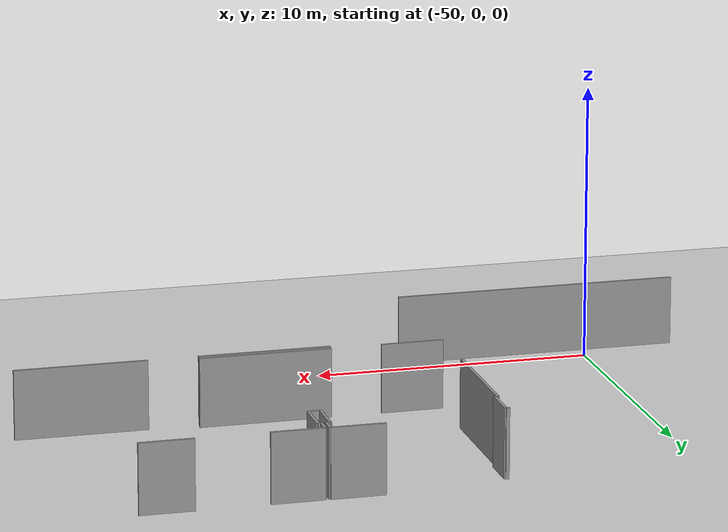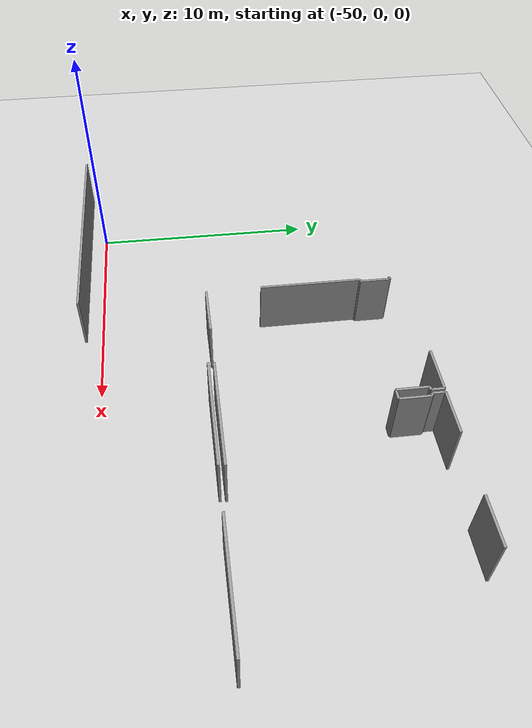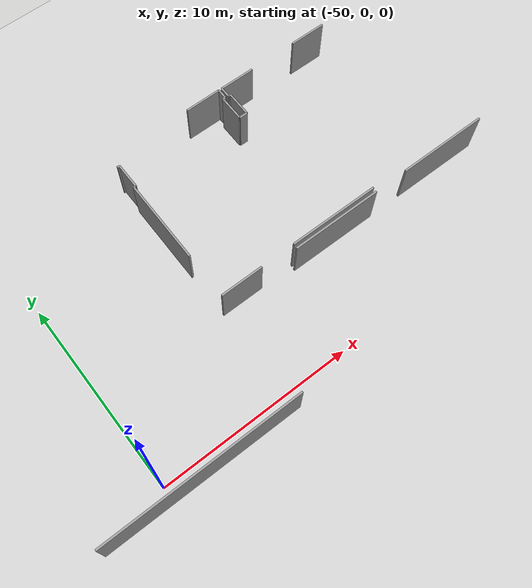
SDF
<sdf version="1.6">
 <world name="default">
  <model name="ground_plane">
   <static>1</static>
   <link name="link">
    <collision name="collision">
     <geometry><plane><normal>0 0 1</normal><size>100 100</size></plane></geometry>
     <surface><friction><ode><mu>100</mu><mu2>50</mu2></ode></friction></surface>
    </collision>
    <visual name="visual">
     <cast_shadows>0</cast_shadows>
     <geometry><plane><normal>0 0 1</normal><size>100 100</size></plane></geometry>
     <material>
      <script><uri>file://media/materials/scripts/gazebo.material</uri><name>Gazebo/Grey</name></script>
     </material>
    </visual>
   </link>
  </model>
  <model name="0510040943_A-40">
   <static>1</static>
   <link name="Wall_15">
    <collision name="Wall_15_Collision">
     <geometry><box><size>4.71139696555 0.1 2.5</size></box></geometry>
     <pose>2.35569848277 0 1.25 0 0 0</pose>
    </collision>
    <visual name="Wall_15_Visual">
     <pose>2.35569848277 0 1.25 0 0 0</pose>
     <geometry><box><size>4.71139696555 0.1 2.5</size></box></geometry>
     <material>
      <script><uri>file://media/materials/scripts/gazebo.material</uri><name>Gazebo/Grey</name></script>
      <ambient>1 1 1 1</ambient>
     </material>
    </visual>
    <pose>16.8624092962 -8.89303293246 0 0 0 0.0</pose>
   </link>
   <link name="Wall_16">
    <collision name="Wall_16_Collision">
     <geometry><box><size>4.71456842746 0.1 2.5</size></box></geometry>
     <pose>2.35728421373 0 1.25 0 0 0</pose>
    </collision>
    <visual name="Wall_16_Visual">
     <pose>2.35728421373 0 1.25 0 0 0</pose>
     <geometry><box><size>4.71456842746 0.1 2.5</size></box></geometry>
     <material>
      <script><uri>file://media/materials/scripts/gazebo.material</uri><name>Gazebo/Grey</name></script>
      <ambient>1 1 1 1</ambient>
     </material>
    </visual>
    <pose>23.3612421982 -8.89303293246 0 0 0 0.0</pose>
   </link>
   <link name="Wall_43">
    <collision name="Wall_43_Collision">
     <geometry><box><size>10.3198102197 0.1 2.5</size></box></geometry>
     <pose>5.15990510986 0 1.25 0 0 0</pose>
    </collision>
    <visual name="Wall_43_Visual">
     <pose>5.15990510986 0 1.25 0 0 0</pose>
     <geometry><box><size>10.3198102197 0.1 2.5</size></box></geometry>
     <material>
      <script><uri>file://media/materials/scripts/gazebo.material</uri><name>Gazebo/Grey</name></script>
      <ambient>1 1 1 1</ambient>
     </material>
    </visual>
    <pose>12.9674734866 -14.153727102 0 0 0 3.14159265359</pose>
   </link>
   <link name="Wall_54">
    <collision name="Wall_54_Collision">
     <geometry><box><size>4.38968386868 0.1 2.5</size></box></geometry>
     <pose>2.19484193434 0 1.25 0 0 0</pose>
    </collision>
    <visual name="Wall_54_Visual">
     <pose>2.19484193434 0 1.25 0 0 0</pose>
     <geometry><box><size>4.38968386868 0.1 2.5</size></box></geometry>
     <material>
      <script><uri>file://media/materials/scripts/gazebo.material</uri><name>Gazebo/Grey</name></script>
      <ambient>1 1 1 1</ambient>
     </material>
    </visual>
    <pose>12.8601512153 -6.28812097224 0 0 0 1.57079632679</pose>
   </link>
   <link name="Wall_55">
    <collision name="Wall_55_Collision">
     <geometry><box><size>0.10440452631 0.1 2.5</size></box></geometry>
     <pose>0.0522022631552 0 1.25 0 0 0</pose>
    </collision>
    <visual name="Wall_55_Visual">
     <pose>0.0522022631552 0 1.25 0 0 0</pose>
     <geometry><box><size>0.10440452631 0.1 2.5</size></box></geometry>
     <material>
      <script><uri>file://media/materials/scripts/gazebo.material</uri><name>Gazebo/Grey</name></script>
      <ambient>1 1 1 1</ambient>
     </material>
    </visual>
    <pose>12.8601512153 -1.89843710357 0 0 0 0.0</pose>
   </link>
   <link name="Wall_56">
    <collision name="Wall_56_Collision">
     <geometry><box><size>1.32452935505 0.1 2.5</size></box></geometry>
     <pose>0.662264677526 0 1.25 0 0 0</pose>
    </collision>
    <visual name="Wall_56_Visual">
     <pose>0.662264677526 0 1.25 0 0 0</pose>
     <geometry><box><size>1.32452935505 0.1 2.5</size></box></geometry>
     <material>
      <script><uri>file://media/materials/scripts/gazebo.material</uri><name>Gazebo/Grey</name></script>
      <ambient>1 1 1 1</ambient>
     </material>
    </visual>
    <pose>12.9645557416 -1.89843710357 0 0 0 1.57079632679</pose>
   </link>
   <link name="Wall_57">
    <collision name="Wall_57_Collision">
     <geometry><box><size>0.126097325823 0.1 2.5</size></box></geometry>
     <pose>0.0630486629117 0 1.25 0 0 0</pose>
    </collision>
    <visual name="Wall_57_Visual">
     <pose>0.0630486629117 0 1.25 0 0 0</pose>
     <geometry><box><size>0.126097325823 0.1 2.5</size></box></geometry>
     <material>
      <script><uri>file://media/materials/scripts/gazebo.material</uri><name>Gazebo/Grey</name></script>
      <ambient>1 1 1 1</ambient>
     </material>
    </visual>
    <pose>12.9645557416 -0.573907748516 0 0 0 3.14159265359</pose>
   </link>
   <link name="Wall_60">
    <collision name="Wall_60_Collision">
     <geometry><box><size>1.90287715025 0.1 2.5</size></box></geometry>
     <pose>0.951438575126 0 1.25 0 0 0</pose>
    </collision>
    <visual name="Wall_60_Visual">
     <pose>0.951438575126 0 1.25 0 0 0</pose>
     <geometry><box><size>1.90287715025 0.1 2.5</size></box></geometry>
     <material>
      <script><uri>file://media/materials/scripts/gazebo.material</uri><name>Gazebo/Grey</name></script>
      <ambient>1 1 1 1</ambient>
     </material>
    </visual>
    <pose>17.249835084 -0.0189019130258 0 0 0 0.0</pose>
   </link>
   <link name="Wall_61">
    <collision name="Wall_61_Collision">
     <geometry><box><size>0.534962196174 0.1 2.5</size></box></geometry>
     <pose>0.267481098087 0 1.25 0 0 0</pose>
    </collision>
    <visual name="Wall_61_Visual">
     <pose>0.267481098087 0 1.25 0 0 0</pose>
     <geometry><box><size>0.534962196174 0.1 2.5</size></box></geometry>
     <material>
      <script><uri>file://media/materials/scripts/gazebo.material</uri><name>Gazebo/Grey</name></script>
      <ambient>1 1 1 1</ambient>
     </material>
    </visual>
    <pose>19.1527122342 -0.0189019130258 0 0 0 -1.57079632679</pose>
   </link>
   <link name="Wall_62">
    <collision name="Wall_62_Collision">
     <geometry><box><size>0.138402598062 0.1 2.5</size></box></geometry>
     <pose>0.0692012990308 0 1.25 0 0 0</pose>
    </collision>
    <visual name="Wall_62_Visual">
     <pose>0.0692012990308 0 1.25 0 0 0</pose>
     <geometry><box><size>0.138402598062 0.1 2.5</size></box></geometry>
     <material>
      <script><uri>file://media/materials/scripts/gazebo.material</uri><name>Gazebo/Grey</name></script>
      <ambient>1 1 1 1</ambient>
     </material>
    </visual>
    <pose>19.1527122342 -0.5538641092 0 0 0 3.14159265359</pose>
   </link>
   <link name="Wall_63">
    <collision name="Wall_63_Collision">
     <geometry><box><size>1.33264829756 0.1 2.5</size></box></geometry>
     <pose>0.66632414878 0 1.25 0 0 0</pose>
    </collision>
    <visual name="Wall_63_Visual">
     <pose>0.66632414878 0 1.25 0 0 0</pose>
     <geometry><box><size>1.33264829756 0.1 2.5</size></box></geometry>
     <material>
      <script><uri>file://media/materials/scripts/gazebo.material</uri><name>Gazebo/Grey</name></script>
      <ambient>1 1 1 1</ambient>
     </material>
    </visual>
    <pose>19.0143096362 -0.5538641092 0 0 0 -1.57079632679</pose>
   </link>
   <link name="Wall_64">
    <collision name="Wall_64_Collision">
     <geometry><box><size>0.427005632516 0.1 2.5</size></box></geometry>
     <pose>0.213502816258 0 1.25 0 0 0</pose>
    </collision>
    <visual name="Wall_64_Visual">
     <pose>0.213502816258 0 1.25 0 0 0</pose>
     <geometry><box><size>0.427005632516 0.1 2.5</size></box></geometry>
     <material>
      <script><uri>file://media/materials/scripts/gazebo.material</uri><name>Gazebo/Grey</name></script>
      <ambient>1 1 1 1</ambient>
     </material>
    </visual>
    <pose>19.0143096362 -1.88651240676 0 0 0 0.0</pose>
   </link>
   <link name="Wall_65">
    <collision name="Wall_65_Collision">
     <geometry><box><size>1.31450753539 0.1 2.5</size></box></geometry>
     <pose>0.657253767697 0 1.25 0 0 0</pose>
    </collision>
    <visual name="Wall_65_Visual">
     <pose>0.657253767697 0 1.25 0 0 0</pose>
     <geometry><box><size>1.31450753539 0.1 2.5</size></box></geometry>
     <material>
      <script><uri>file://media/materials/scripts/gazebo.material</uri><name>Gazebo/Grey</name></script>
      <ambient>1 1 1 1</ambient>
     </material>
    </visual>
    <pose>19.4413152687 -1.88651240676 0 0 0 1.57079632679</pose>
   </link>
   <link name="Wall_66">
    <collision name="Wall_66_Collision">
     <geometry><box><size>0.117217232455 0.1 2.5</size></box></geometry>
     <pose>0.0586086162277 0 1.25 0 0 0</pose>
    </collision>
    <visual name="Wall_66_Visual">
     <pose>0.0586086162277 0 1.25 0 0 0</pose>
     <geometry><box><size>0.117217232455 0.1 2.5</size></box></geometry>
     <material>
      <script><uri>file://media/materials/scripts/gazebo.material</uri><name>Gazebo/Grey</name></script>
      <ambient>1 1 1 1</ambient>
     </material>
    </visual>
    <pose>19.4413152687 -0.572004871366 0 0 0 3.14159265359</pose>
   </link>
   <link name="Wall_67">
    <collision name="Wall_67_Collision">
     <geometry><box><size>0.542954280205 0.1 2.5</size></box></geometry>
     <pose>0.271477140103 0 1.25 0 0 0</pose>
    </collision>
    <visual name="Wall_67_Visual">
     <pose>0.271477140103 0 1.25 0 0 0</pose>
     <geometry><box><size>0.542954280205 0.1 2.5</size></box></geometry>
     <material>
      <script><uri>file://media/materials/scripts/gazebo.material</uri><name>Gazebo/Grey</name></script>
      <ambient>1 1 1 1</ambient>
     </material>
    </visual>
    <pose>19.3240980362 -0.572004871366 0 0 0 1.57079632679</pose>
   </link>
   <link name="Wall_68">
    <collision name="Wall_68_Collision">
     <geometry><box><size>1.85923783427 0.1 2.5</size></box></geometry>
     <pose>0.929618917136 0 1.25 0 0 0</pose>
    </collision>
    <visual name="Wall_68_Visual">
     <pose>0.929618917136 0 1.25 0 0 0</pose>
     <geometry><box><size>1.85923783427 0.1 2.5</size></box></geometry>
     <material>
      <script><uri>file://media/materials/scripts/gazebo.material</uri><name>Gazebo/Grey</name></script>
      <ambient>1 1 1 1</ambient>
     </material>
    </visual>
    <pose>19.3240980362 -0.0290505911605 0 0 0 0.0</pose>
   </link>
   <link name="Wall_69">
    <collision name="Wall_69_Collision">
     <geometry><box><size>1.9085857817 0.1 2.5</size></box></geometry>
     <pose>0.954292890851 0 1.25 0 0 0</pose>
    </collision>
    <visual name="Wall_69_Visual">
     <pose>0.954292890851 0 1.25 0 0 0</pose>
     <geometry><box><size>1.9085857817 0.1 2.5</size></box></geometry>
     <material>
      <script><uri>file://media/materials/scripts/gazebo.material</uri><name>Gazebo/Grey</name></script>
      <ambient>1 1 1 1</ambient>
     </material>
    </visual>
    <pose>23.7335718273 -0.0290505911605 0 0 0 0.0</pose>
   </link>
   <link name="Wall_76">
    <collision name="Wall_76_Collision">
     <geometry><box><size>4.70505404171 0.1 2.5</size></box></geometry>
     <pose>2.35252702086 0 1.25 0 0 0</pose>
    </collision>
    <visual name="Wall_76_Visual">
     <pose>2.35252702086 0 1.25 0 0 0</pose>
     <geometry><box><size>4.70505404171 0.1 2.5</size></box></geometry>
     <material>
      <script><uri>file://media/materials/scripts/gazebo.material</uri><name>Gazebo/Grey</name></script>
      <ambient>1 1 1 1</ambient>
     </material>
    </visual>
    <pose>21.5990510986 -8.65365098696 0 0 0 3.14159265359</pose>
   </link>
   <link name="Wall_77">
    <collision name="Wall_77_Collision">
     <geometry><box><size>2.22996356701 0.1 2.5</size></box></geometry>
     <pose>1.11498178351 0 1.25 0 0 0</pose>
    </collision>
    <visual name="Wall_77_Visual">
     <pose>1.11498178351 0 1.25 0 0 0</pose>
     <geometry><box><size>2.22996356701 0.1 2.5</size></box></geometry>
     <material>
      <script><uri>file://media/materials/scripts/gazebo.material</uri><name>Gazebo/Grey</name></script>
      <ambient>1 1 1 1</ambient>
     </material>
    </visual>
    <pose>15.0900695184 -8.65365098696 0 0 0 -3.13522113895</pose>
   </link>
   <pose>-56.15 13.3913863094 0 0 0 0</pose>
  </model>
 </world>
</sdf>
